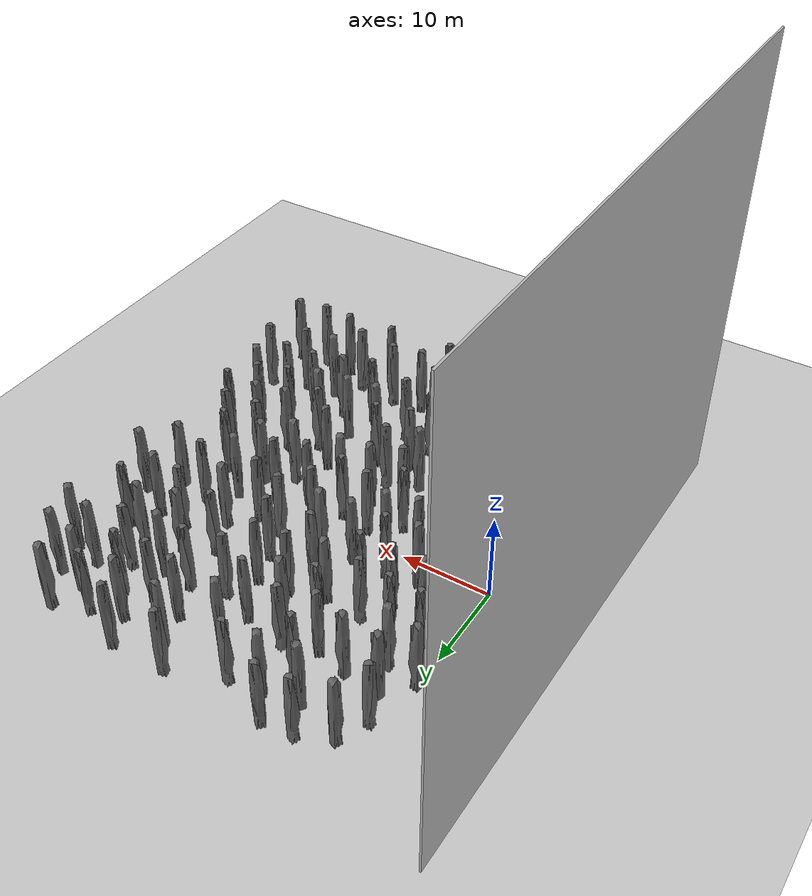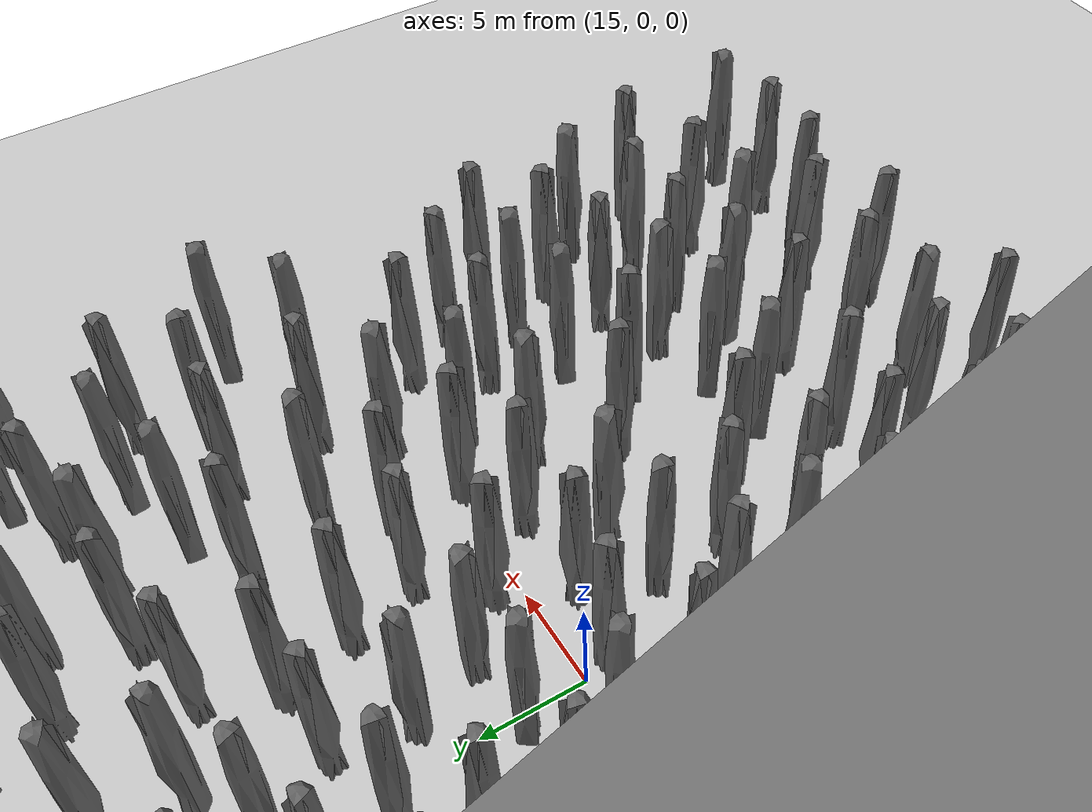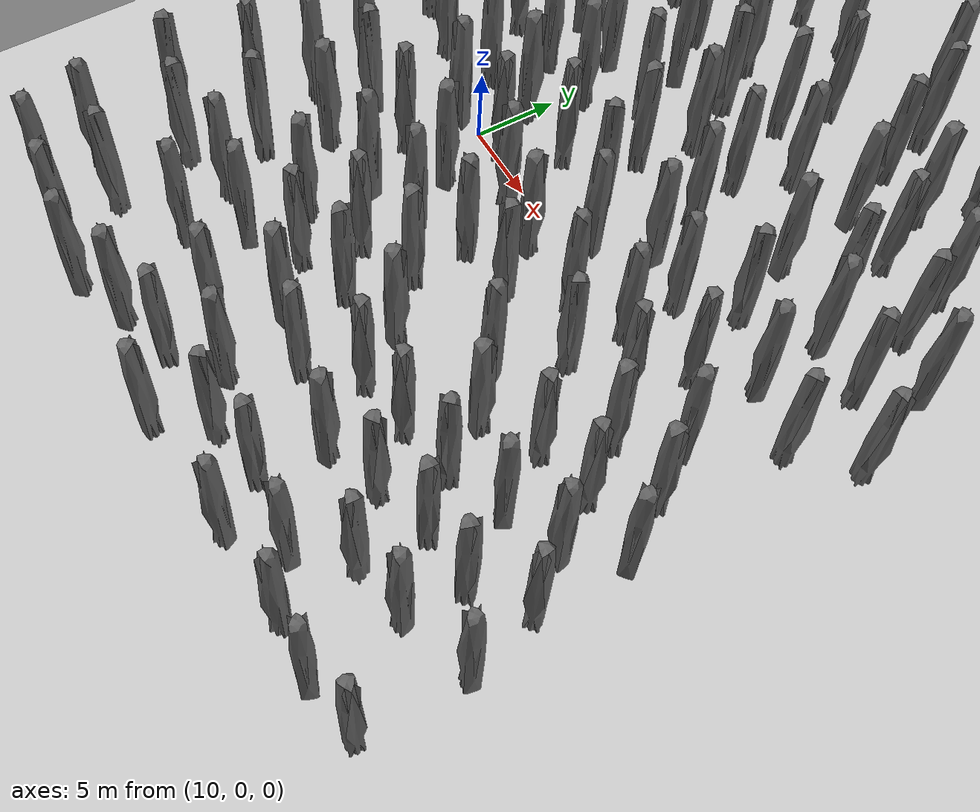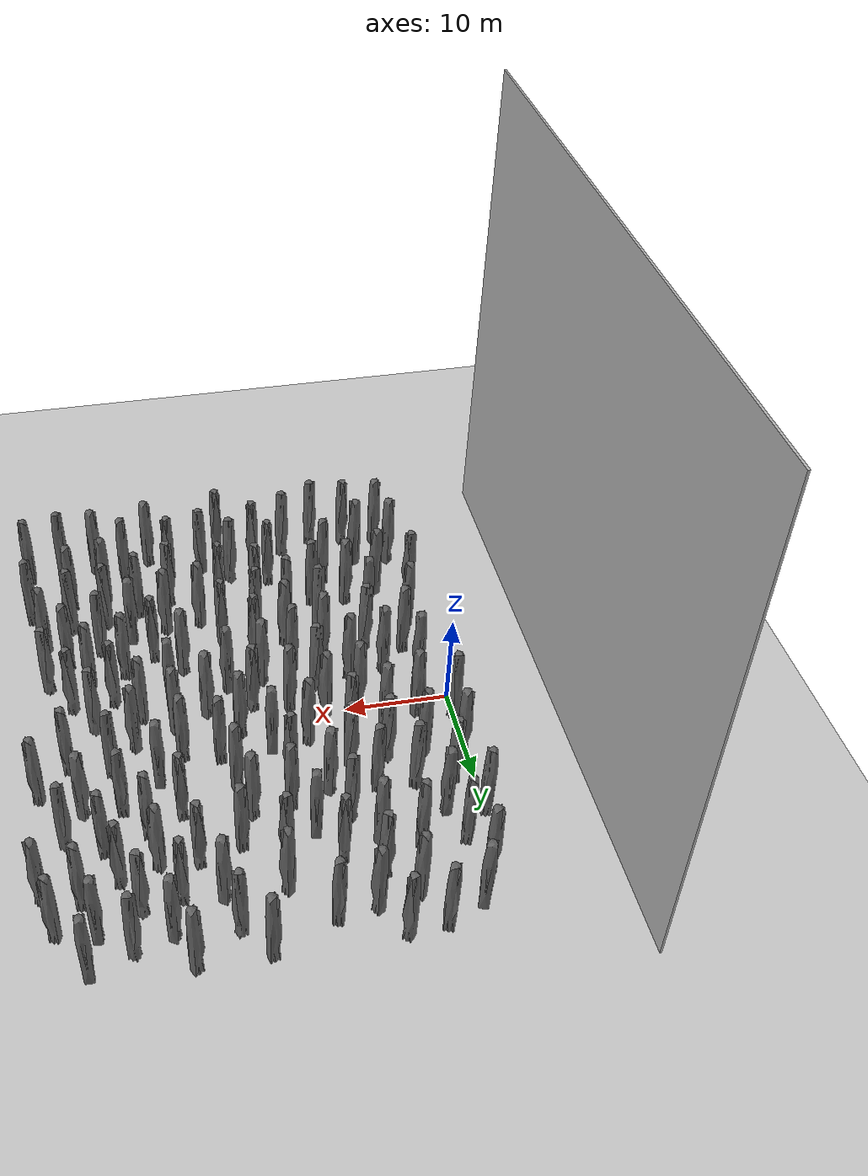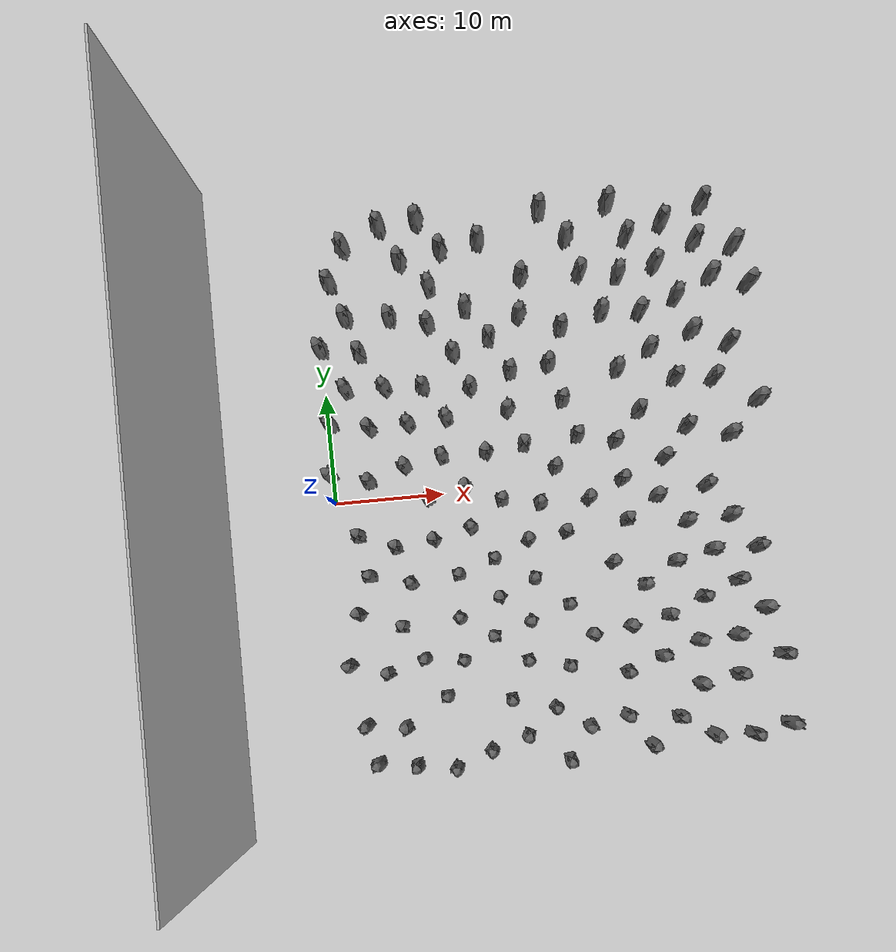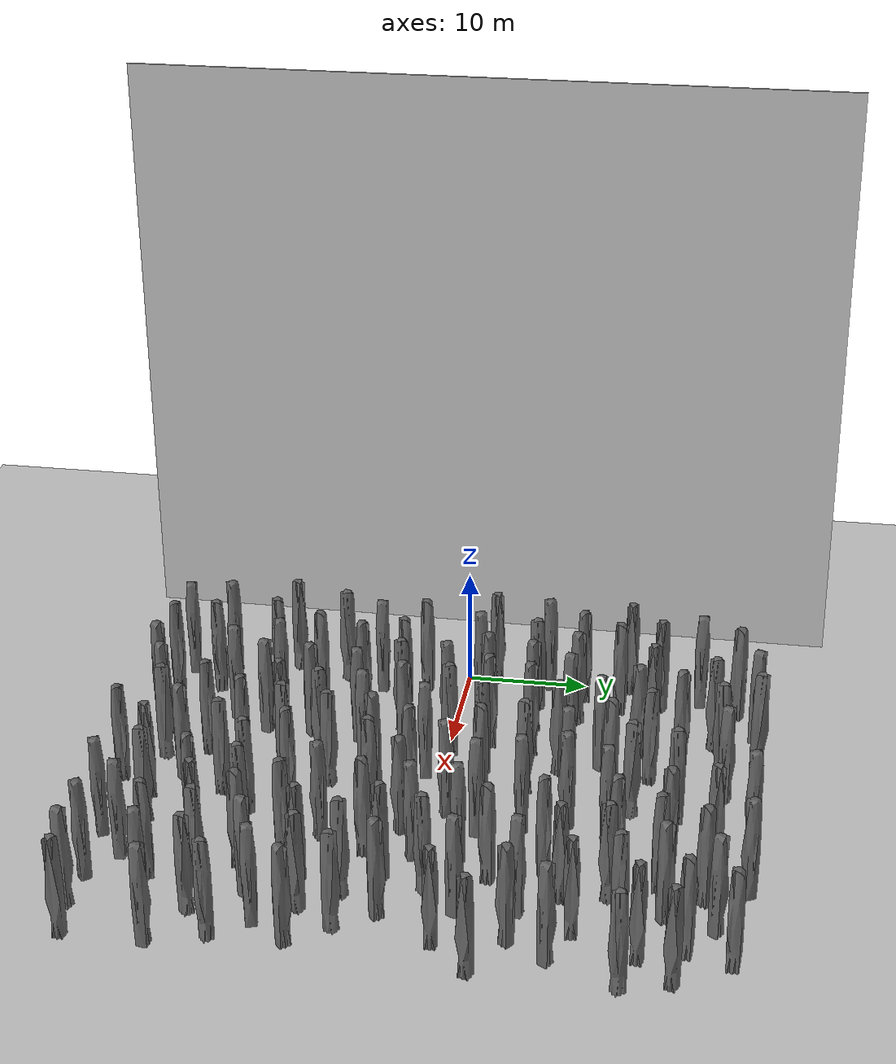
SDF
<sdf version="1.4">
 <world name="default">
  <model name="ground_plane">
   <static>1</static>
   <link name="link">
    <collision name="collision">
     <geometry><plane><normal>0 0 1</normal><size>1000 1000</size></plane></geometry>
     <surface>
      <contact><collide_bitmask>65535</collide_bitmask></contact>
      <friction><ode><mu>100</mu><mu2>50</mu2></ode></friction>
     </surface>
    </collision>
    <visual name="visual">
     <cast_shadows>0</cast_shadows>
     <geometry><plane><normal>0 0 1</normal><size>1000 1000</size></plane></geometry>
    </visual>
   </link>
  </model>
  <model name="wall_back">
   <static>1</static>
   <link name="link">
    <pose>0 0 25.0 0 0 0</pose>
    <collision name="collision"><geometry><box><size>60.0 0.2 50.0</size></box></geometry></collision>
    <visual name="visual">
     <cast_shadows>0</cast_shadows>
     <geometry><box><size>60.0 0.2 50.0</size></box></geometry>
    </visual>
   </link>
   <pose>-10.0 0.0 0 0 0 1.57</pose>
  </model>
  <include><uri>model://sun</uri></include>
  <include>
   <name>columnSimple Stone0</name>
   <uri>model://Simple Stone</uri>
   <pose>2.089127540588379 -23.750636100769043 0 0 0 1.75628542787</pose>
   <static>true</static>
  </include>
  <include>
   <name>columnSimple Stone1</name>
   <uri>model://Simple Stone</uri>
   <pose>1.3199572563171387 -20.33261203765869 0 0 0 2.23758723736</pose>
   <static>true</static>
  </include>
  <include>
   <name>columnSimple Stone2</name>
   <uri>model://Simple Stone</uri>
   <pose>0.31511756777763367 -14.834269523620605 0 0 0 5.33609842108</pose>
   <static>true</static>
  </include>
  <include>
   <name>columnSimple Stone3</name>
   <uri>model://Simple Stone</uri>
   <pose>1.520238995552063 -10.310273170471191 0 0 0 4.03418725223</pose>
   <static>true</static>
  </include>
  <include>
   <name>columnSimple Stone4</name>
   <uri>model://Simple Stone</uri>
   <pose>2.0736961364746094 -3.331663131713867 0 0 0 3.19888672758</pose>
   <static>true</static>
  </include>
  <include>
   <name>columnSimple Stone5</name>
   <uri>model://Simple Stone</uri>
   <pose>0.02124280482530594 2.39031982421875 0 0 0 5.16620424245</pose>
   <static>true</static>
  </include>
  <include>
   <name>columnSimple Stone6</name>
   <uri>model://Simple Stone</uri>
   <pose>0.38208937644958496 6.947551727294922 0 0 0 2.00722694748</pose>
   <static>true</static>
  </include>
  <include>
   <name>columnSimple Stone7</name>
   <uri>model://Simple Stone</uri>
   <pose>2.0325145721435547 10.037956237792969 0 0 0 0.336692622233</pose>
   <static>true</static>
  </include>
  <include>
   <name>columnSimple Stone8</name>
   <uri>model://Simple Stone</uri>
   <pose>0.1384894698858261 13.873977661132812 0 0 0 4.5975235246</pose>
   <static>true</static>
  </include>
  <include>
   <name>columnSimple Stone9</name>
   <uri>model://Simple Stone</uri>
   <pose>1.3763195276260376 19.83197021484375 0 0 0 1.58021642881</pose>
   <static>true</static>
  </include>
  <include>
   <name>columnSimple Stone10</name>
   <uri>model://Simple Stone</uri>
   <pose>4.868232727050781 -20.77367925643921 0 0 0 3.58949233093</pose>
   <static>true</static>
  </include>
  <include>
   <name>columnSimple Stone11</name>
   <uri>model://Simple Stone</uri>
   <pose>3.6764070987701416 -15.822320938110352 0 0 0 3.59125754981</pose>
   <static>true</static>
  </include>
  <include>
   <name>columnSimple Stone12</name>
   <uri>model://Simple Stone</uri>
   <pose>2.7545368671417236 -7.031398773193359 0 0 0 1.62038117285</pose>
   <static>true</static>
  </include>
  <include>
   <name>columnSimple Stone13</name>
   <uri>model://Simple Stone</uri>
   <pose>3.405611038208008 1.4844703674316406 0 0 0 1.93025226042</pose>
   <static>true</static>
  </include>
  <include>
   <name>columnSimple Stone14</name>
   <uri>model://Simple Stone</uri>
   <pose>3.8867599964141846 6.305400848388672 0 0 0 3.91636677235</pose>
   <static>true</static>
  </include>
  <include>
   <name>columnSimple Stone15</name>
   <uri>model://Simple Stone</uri>
   <pose>3.573453664779663 13.18438720703125 0 0 0 3.16454406888</pose>
   <static>true</static>
  </include>
  <include>
   <name>columnSimple Stone16</name>
   <uri>model://Simple Stone</uri>
   <pose>2.6093990802764893 16.55263900756836 0 0 0 4.35249936095</pose>
   <static>true</static>
  </include>
  <include>
   <name>columnSimple Stone17</name>
   <uri>model://Simple Stone</uri>
   <pose>2.8625264167785645 23.004619598388672 0 0 0 2.73665399316</pose>
   <static>true</static>
  </include>
  <include>
   <name>columnSimple Stone18</name>
   <uri>model://Simple Stone</uri>
   <pose>5.562690734863281 -24.20766258239746 0 0 0 0.137049204431</pose>
   <static>true</static>
  </include>
  <include>
   <name>columnSimple Stone19</name>
   <uri>model://Simple Stone</uri>
   <pose>7.038676738739014 -14.837610244750977 0 0 0 1.94142449035</pose>
   <static>true</static>
  </include>
  <include>
   <name>columnSimple Stone20</name>
   <uri>model://Simple Stone</uri>
   <pose>5.320240020751953 -11.784499168395996 0 0 0 3.089036522</pose>
   <static>true</static>
  </include>
  <include>
   <name>columnSimple Stone21</name>
   <uri>model://Simple Stone</uri>
   <pose>6.429753303527832 -7.970035552978516 0 0 0 0.506042084154</pose>
   <static>true</static>
  </include>
  <include>
   <name>columnSimple Stone22</name>
   <uri>model://Simple Stone</uri>
   <pose>5.321081161499023 -4.646579742431641 0 0 0 3.41383842941</pose>
   <static>true</static>
  </include>
  <include>
   <name>columnSimple Stone23</name>
   <uri>model://Simple Stone</uri>
   <pose>6.730787754058838 2.5879688262939453 0 0 0 2.33088399204</pose>
   <static>true</static>
  </include>
  <include>
   <name>columnSimple Stone24</name>
   <uri>model://Simple Stone</uri>
   <pose>7.389004707336426 6.399181365966797 0 0 0 0.767908006364</pose>
   <static>true</static>
  </include>
  <include>
   <name>columnSimple Stone25</name>
   <uri>model://Simple Stone</uri>
   <pose>5.532750606536865 9.886768341064453 0 0 0 0.834400732209</pose>
   <static>true</static>
  </include>
  <include>
   <name>columnSimple Stone26</name>
   <uri>model://Simple Stone</uri>
   <pose>6.593400478363037 16.1890869140625 0 0 0 4.44148814154</pose>
   <static>true</static>
  </include>
  <include>
   <name>columnSimple Stone27</name>
   <uri>model://Simple Stone</uri>
   <pose>6.302785396575928 24.62250518798828 0 0 0 1.17773842828</pose>
   <static>true</static>
  </include>
  <include>
   <name>columnSimple Stone28</name>
   <uri>model://Simple Stone</uri>
   <pose>9.025959968566895 -24.73707690834999 0 0 0 0.91093665833</pose>
   <static>true</static>
  </include>
  <include>
   <name>columnSimple Stone29</name>
   <uri>model://Simple Stone</uri>
   <pose>8.757588386535645 -18.3027081489563 0 0 0 1.57488840494</pose>
   <static>true</static>
  </include>
  <include>
   <name>columnSimple Stone30</name>
   <uri>model://Simple Stone</uri>
   <pose>8.80453872680664 -4.272365570068359 0 0 0 4.00267630085</pose>
   <static>true</static>
  </include>
  <include>
   <name>columnSimple Stone31</name>
   <uri>model://Simple Stone</uri>
   <pose>8.60007095336914 -0.5277271270751953 0 0 0 2.04513920781</pose>
   <static>true</static>
  </include>
  <include>
   <name>columnSimple Stone32</name>
   <uri>model://Simple Stone</uri>
   <pose>9.02550983428955 9.61263656616211 0 0 0 1.26187507129</pose>
   <static>true</static>
  </include>
  <include>
   <name>columnSimple Stone33</name>
   <uri>model://Simple Stone</uri>
   <pose>7.939784526824951 21.272674560546875 0 0 0 4.03147301381</pose>
   <static>true</static>
  </include>
  <include>
   <name>columnSimple Stone34</name>
   <uri>model://Simple Stone</uri>
   <pose>9.793307304382324 24.923786163330078 0 0 0 5.57087074738</pose>
   <static>true</static>
  </include>
  <include>
   <name>columnSimple Stone35</name>
   <uri>model://Simple Stone</uri>
   <pose>12.287559509277344 -23.457828998565674 0 0 0 0.766500239801</pose>
   <static>true</static>
  </include>
  <include>
   <name>columnSimple Stone36</name>
   <uri>model://Simple Stone</uri>
   <pose>10.515149116516113 -15.271949768066406 0 0 0 1.23738739103</pose>
   <static>true</static>
  </include>
  <include>
   <name>columnSimple Stone37</name>
   <uri>model://Simple Stone</uri>
   <pose>10.523487091064453 -11.480649948120117 0 0 0 0.769664836405</pose>
   <static>true</static>
  </include>
  <include>
   <name>columnSimple Stone38</name>
   <uri>model://Simple Stone</uri>
   <pose>10.731672286987305 -7.597433090209961 0 0 0 1.76186441075</pose>
   <static>true</static>
  </include>
  <include>
   <name>columnSimple Stone39</name>
   <uri>model://Simple Stone</uri>
   <pose>12.217470169067383 -3.4809017181396484 0 0 0 0.603357928491</pose>
   <static>true</static>
  </include>
  <include>
   <name>columnSimple Stone40</name>
   <uri>model://Simple Stone</uri>
   <pose>12.020466804504395 0.23082542419433594 0 0 0 3.96198621629</pose>
   <static>true</static>
  </include>
  <include>
   <name>columnSimple Stone41</name>
   <uri>model://Simple Stone</uri>
   <pose>10.178444862365723 3.2110042572021484 0 0 0 0.289848941272</pose>
   <static>true</static>
  </include>
  <include>
   <name>columnSimple Stone42</name>
   <uri>model://Simple Stone</uri>
   <pose>10.88403034210205 6.642717361450195 0 0 0 0.466043816732</pose>
   <static>true</static>
  </include>
  <include>
   <name>columnSimple Stone43</name>
   <uri>model://Simple Stone</uri>
   <pose>12.050304412841797 12.452354431152344 0 0 0 0.904490395164</pose>
   <static>true</static>
  </include>
  <include>
   <name>columnSimple Stone44</name>
   <uri>model://Simple Stone</uri>
   <pose>9.9757080078125 15.275569915771484 0 0 0 2.16217307419</pose>
   <static>true</static>
  </include>
  <include>
   <name>columnSimple Stone45</name>
   <uri>model://Simple Stone</uri>
   <pose>10.377164840698242 18.755992889404297 0 0 0 0.355086018241</pose>
   <static>true</static>
  </include>
  <include>
   <name>columnSimple Stone46</name>
   <uri>model://Simple Stone</uri>
   <pose>11.714679718017578 21.994136810302734 0 0 0 3.67260565642</pose>
   <static>true</static>
  </include>
  <include>
   <name>columnSimple Stone47</name>
   <uri>model://Simple Stone</uri>
   <pose>14.492658615112305 -19.13565969467163 0 0 0 0.0543491025532</pose>
   <static>true</static>
  </include>
  <include>
   <name>columnSimple Stone48</name>
   <uri>model://Simple Stone</uri>
   <pose>13.465665817260742 -13.382780075073242 0 0 0 4.62112501889</pose>
   <static>true</static>
  </include>
  <include>
   <name>columnSimple Stone49</name>
   <uri>model://Simple Stone</uri>
   <pose>14.24135684967041 -9.966229438781738 0 0 0 4.10295872997</pose>
   <static>true</static>
  </include>
  <include>
   <name>columnSimple Stone50</name>
   <uri>model://Simple Stone</uri>
   <pose>14.048151016235352 -6.468061447143555 0 0 0 1.54336510472</pose>
   <static>true</static>
  </include>
  <include>
   <name>columnSimple Stone51</name>
   <uri>model://Simple Stone</uri>
   <pose>14.198853492736816 3.183809280395508 0 0 0 4.0722662424</pose>
   <static>true</static>
  </include>
  <include>
   <name>columnSimple Stone52</name>
   <uri>model://Simple Stone</uri>
   <pose>13.300483703613281 9.179500579833984 0 0 0 2.46300177651</pose>
   <static>true</static>
  </include>
  <include>
   <name>columnSimple Stone53</name>
   <uri>model://Simple Stone</uri>
   <pose>13.523374557495117 16.50360107421875 0 0 0 6.0386637076</pose>
   <static>true</static>
  </include>
  <include>
   <name>columnSimple Stone54</name>
   <uri>model://Simple Stone</uri>
   <pose>15.64159107208252 -22.44541311264038 0 0 0 5.88668590663</pose>
   <static>true</static>
  </include>
  <include>
   <name>columnSimple Stone55</name>
   <uri>model://Simple Stone</uri>
   <pose>16.27473258972168 -15.7996826171875 0 0 0 0.204175545166</pose>
   <static>true</static>
  </include>
  <include>
   <name>columnSimple Stone56</name>
   <uri>model://Simple Stone</uri>
   <pose>16.81926727294922 -12.33875846862793 0 0 0 5.59144863307</pose>
   <static>true</static>
  </include>
  <include>
   <name>columnSimple Stone57</name>
   <uri>model://Simple Stone</uri>
   <pose>17.253034591674805 -5.052705764770508 0 0 0 2.43969145582</pose>
   <static>true</static>
  </include>
  <include>
   <name>columnSimple Stone58</name>
   <uri>model://Simple Stone</uri>
   <pose>15.204755783081055 -1.230276107788086 0 0 0 1.75334172094</pose>
   <static>true</static>
  </include>
  <include>
   <name>columnSimple Stone59</name>
   <uri>model://Simple Stone</uri>
   <pose>16.5061092376709 6.880130767822266 0 0 0 5.51758037674</pose>
   <static>true</static>
  </include>
  <include>
   <name>columnSimple Stone60</name>
   <uri>model://Simple Stone</uri>
   <pose>17.03005599975586 10.344230651855469 0 0 0 1.80578448708</pose>
   <static>true</static>
  </include>
  <include>
   <name>columnSimple Stone61</name>
   <uri>model://Simple Stone</uri>
   <pose>15.382611274719238 13.534133911132812 0 0 0 2.92909482202</pose>
   <static>true</static>
  </include>
  <include>
   <name>columnSimple Stone62</name>
   <uri>model://Simple Stone</uri>
   <pose>15.17757511138916 22.52599334716797 0 0 0 1.22222422126</pose>
   <static>true</static>
  </include>
  <include>
   <name>columnSimple Stone63</name>
   <uri>model://Simple Stone</uri>
   <pose>19.17519187927246 -24.981346003711224 0 0 0 0.140723054267</pose>
   <static>true</static>
  </include>
  <include>
   <name>columnSimple Stone64</name>
   <uri>model://Simple Stone</uri>
   <pose>18.339569091796875 -20.210368156433105 0 0 0 0.757596582929</pose>
   <static>true</static>
  </include>
  <include>
   <name>columnSimple Stone65</name>
   <uri>model://Simple Stone</uri>
   <pose>17.536304473876953 -8.544734954833984 0 0 0 5.96339551307</pose>
   <static>true</static>
  </include>
  <include>
   <name>columnSimple Stone66</name>
   <uri>model://Simple Stone</uri>
   <pose>18.65448760986328 -1.8417186737060547 0 0 0 0.250066793293</pose>
   <static>true</static>
  </include>
  <include>
   <name>columnSimple Stone67</name>
   <uri>model://Simple Stone</uri>
   <pose>17.679977416992188 3.5791378021240234 0 0 0 2.96585802048</pose>
   <static>true</static>
  </include>
  <include>
   <name>columnSimple Stone68</name>
   <uri>model://Simple Stone</uri>
   <pose>18.330169677734375 15.427913665771484 0 0 0 5.53223342657</pose>
   <static>true</static>
  </include>
  <include>
   <name>columnSimple Stone69</name>
   <uri>model://Simple Stone</uri>
   <pose>18.817745208740234 18.897319793701172 0 0 0 3.76775713082</pose>
   <static>true</static>
  </include>
  <include>
   <name>columnSimple Stone70</name>
   <uri>model://Simple Stone</uri>
   <pose>21.251096725463867 -22.159090757369995 0 0 0 5.10028997874</pose>
   <static>true</static>
  </include>
  <include>
   <name>columnSimple Stone71</name>
   <uri>model://Simple Stone</uri>
   <pose>19.941171646118164 -16.6262788772583 0 0 0 6.05786060561</pose>
   <static>true</static>
  </include>
  <include>
   <name>columnSimple Stone72</name>
   <uri>model://Simple Stone</uri>
   <pose>20.40487289428711 -11.153459548950195 0 0 0 0.121773912249</pose>
   <static>true</static>
  </include>
  <include>
   <name>columnSimple Stone73</name>
   <uri>model://Simple Stone</uri>
   <pose>20.73398208618164 -4.6613311767578125 0 0 0 3.50660844285</pose>
   <static>true</static>
  </include>
  <include>
   <name>columnSimple Stone74</name>
   <uri>model://Simple Stone</uri>
   <pose>20.298858642578125 1.251913070678711 0 0 0 2.00394550341</pose>
   <static>true</static>
  </include>
  <include>
   <name>columnSimple Stone75</name>
   <uri>model://Simple Stone</uri>
   <pose>21.50251579284668 7.305660247802734 0 0 0 1.81656002355</pose>
   <static>true</static>
  </include>
  <include>
   <name>columnSimple Stone76</name>
   <uri>model://Simple Stone</uri>
   <pose>20.537118911743164 10.673526763916016 0 0 0 2.10658306181</pose>
   <static>true</static>
  </include>
  <include>
   <name>columnSimple Stone77</name>
   <uri>model://Simple Stone</uri>
   <pose>21.95860481262207 13.87569808959961 0 0 0 1.76126737758</pose>
   <static>true</static>
  </include>
  <include>
   <name>columnSimple Stone78</name>
   <uri>model://Simple Stone</uri>
   <pose>21.00710678100586 24.8216552734375 0 0 0 1.8180089086</pose>
   <static>true</static>
  </include>
  <include>
   <name>columnSimple Stone79</name>
   <uri>model://Simple Stone</uri>
   <pose>24.690448760986328 -21.491723775863647 0 0 0 5.78518358502</pose>
   <static>true</static>
  </include>
  <include>
   <name>columnSimple Stone80</name>
   <uri>model://Simple Stone</uri>
   <pose>22.340761184692383 -14.073537826538086 0 0 0 4.02939281375</pose>
   <static>true</static>
  </include>
  <include>
   <name>columnSimple Stone81</name>
   <uri>model://Simple Stone</uri>
   <pose>24.677413940429688 -7.760255813598633 0 0 0 2.20089425405</pose>
   <static>true</static>
  </include>
  <include>
   <name>columnSimple Stone82</name>
   <uri>model://Simple Stone</uri>
   <pose>23.05851173400879 -1.8340606689453125 0 0 0 2.30340423145</pose>
   <static>true</static>
  </include>
  <include>
   <name>columnSimple Stone83</name>
   <uri>model://Simple Stone</uri>
   <pose>22.527265548706055 3.9553775787353516 0 0 0 1.5514107444</pose>
   <static>true</static>
  </include>
  <include>
   <name>columnSimple Stone84</name>
   <uri>model://Simple Stone</uri>
   <pose>24.13132667541504 18.74321746826172 0 0 0 2.55493770412</pose>
   <static>true</static>
  </include>
  <include>
   <name>columnSimple Stone85</name>
   <uri>model://Simple Stone</uri>
   <pose>23.25668716430664 22.135784149169922 0 0 0 5.098842837</pose>
   <static>true</static>
  </include>
  <include>
   <name>columnSimple Stone86</name>
   <uri>model://Simple Stone</uri>
   <pose>26.68305206298828 -24.373397767543793 0 0 0 2.05741406445</pose>
   <static>true</static>
  </include>
  <include>
   <name>columnSimple Stone87</name>
   <uri>model://Simple Stone</uri>
   <pose>25.080078125 -17.6649808883667 0 0 0 0.439076417772</pose>
   <static>true</static>
  </include>
  <include>
   <name>columnSimple Stone88</name>
   <uri>model://Simple Stone</uri>
   <pose>25.816099166870117 -13.630217552185059 0 0 0 3.9669711779</pose>
   <static>true</static>
  </include>
  <include>
   <name>columnSimple Stone89</name>
   <uri>model://Simple Stone</uri>
   <pose>26.317840576171875 -4.056501388549805 0 0 0 3.0974609171</pose>
   <static>true</static>
  </include>
  <include>
   <name>columnSimple Stone90</name>
   <uri>model://Simple Stone</uri>
   <pose>26.238088607788086 -0.3627300262451172 0 0 0 1.98158537166</pose>
   <static>true</static>
  </include>
  <include>
   <name>columnSimple Stone91</name>
   <uri>model://Simple Stone</uri>
   <pose>25.93150520324707 3.127330780029297 0 0 0 1.85159538146</pose>
   <static>true</static>
  </include>
  <include>
   <name>columnSimple Stone92</name>
   <uri>model://Simple Stone</uri>
   <pose>26.718326568603516 9.678592681884766 0 0 0 0.11330117946</pose>
   <static>true</static>
  </include>
  <include>
   <name>columnSimple Stone93</name>
   <uri>model://Simple Stone</uri>
   <pose>25.801183700561523 14.993751525878906 0 0 0 0.192362760078</pose>
   <static>true</static>
  </include>
  <include>
   <name>columnSimple Stone94</name>
   <uri>model://Simple Stone</uri>
   <pose>29.31672477722168 -22.06292748451233 0 0 0 1.59594806412</pose>
   <static>true</static>
  </include>
  <include>
   <name>columnSimple Stone95</name>
   <uri>model://Simple Stone</uri>
   <pose>28.394611358642578 -16.529909133911133 0 0 0 4.80505964723</pose>
   <static>true</static>
  </include>
  <include>
   <name>columnSimple Stone96</name>
   <uri>model://Simple Stone</uri>
   <pose>29.253799438476562 -12.954399108886719 0 0 0 2.88706531652</pose>
   <static>true</static>
  </include>
  <include>
   <name>columnSimple Stone97</name>
   <uri>model://Simple Stone</uri>
   <pose>27.372377395629883 -9.998936653137207 0 0 0 6.24732609282</pose>
   <static>true</static>
  </include>
  <include>
   <name>columnSimple Stone98</name>
   <uri>model://Simple Stone</uri>
   <pose>29.25417137145996 -2.145355224609375 0 0 0 4.31863375902</pose>
   <static>true</static>
  </include>
  <include>
   <name>columnSimple Stone99</name>
   <uri>model://Simple Stone</uri>
   <pose>28.324342727661133 5.686399459838867 0 0 0 2.94119924643</pose>
   <static>true</static>
  </include>
  <include>
   <name>columnSimple Stone100</name>
   <uri>model://Simple Stone</uri>
   <pose>29.292362213134766 14.700183868408203 0 0 0 4.08010885157</pose>
   <static>true</static>
  </include>
  <include>
   <name>columnSimple Stone101</name>
   <uri>model://Simple Stone</uri>
   <pose>27.60910987854004 18.319496154785156 0 0 0 6.11398850215</pose>
   <static>true</static>
  </include>
  <include>
   <name>columnSimple Stone102</name>
   <uri>model://Simple Stone</uri>
   <pose>28.65312385559082 21.66382598876953 0 0 0 2.65546159454</pose>
   <static>true</static>
  </include>
  <include>
   <name>columnSimple Stone103</name>
   <uri>model://Simple Stone</uri>
   <pose>27.23101234436035 24.865718841552734 0 0 0 2.06369009277</pose>
   <static>true</static>
  </include>
  <include>
   <name>columnSimple Stone104</name>
   <uri>model://Simple Stone</uri>
   <pose>31.559349060058594 -19.371246337890625 0 0 0 3.63785136887</pose>
   <static>true</static>
  </include>
  <include>
   <name>columnSimple Stone105</name>
   <uri>model://Simple Stone</uri>
   <pose>31.729352951049805 -15.455660820007324 0 0 0 5.70139561808</pose>
   <static>true</static>
  </include>
  <include>
   <name>columnSimple Stone106</name>
   <uri>model://Simple Stone</uri>
   <pose>30.38751983642578 -8.164749145507812 0 0 0 4.43220120817</pose>
   <static>true</static>
  </include>
  <include>
   <name>columnSimple Stone107</name>
   <uri>model://Simple Stone</uri>
   <pose>31.707752227783203 -4.646245956420898 0 0 0 5.87561360838</pose>
   <static>true</static>
  </include>
  <include>
   <name>columnSimple Stone108</name>
   <uri>model://Simple Stone</uri>
   <pose>30.23151206970215 1.219064712524414 0 0 0 3.78301927237</pose>
   <static>true</static>
  </include>
  <include>
   <name>columnSimple Stone109</name>
   <uri>model://Simple Stone</uri>
   <pose>31.87114906311035 8.377620697021484 0 0 0 1.41520845014</pose>
   <static>true</static>
  </include>
  <include>
   <name>columnSimple Stone110</name>
   <uri>model://Simple Stone</uri>
   <pose>29.853681564331055 11.241943359375 0 0 0 4.62765679932</pose>
   <static>true</static>
  </include>
  <include>
   <name>columnSimple Stone111</name>
   <uri>model://Simple Stone</uri>
   <pose>31.061031341552734 18.91845703125 0 0 0 0.626406151087</pose>
   <static>true</static>
  </include>
  <include>
   <name>columnSimple Stone112</name>
   <uri>model://Simple Stone</uri>
   <pose>32.02627944946289 22.741641998291016 0 0 0 1.00497437782</pose>
   <static>true</static>
  </include>
  <include>
   <name>columnSimple Stone113</name>
   <uri>model://Simple Stone</uri>
   <pose>32.26821517944336 -23.96578288078308 0 0 0 2.25314031655</pose>
   <static>true</static>
  </include>
  <include>
   <name>columnSimple Stone114</name>
   <uri>model://Simple Stone</uri>
   <pose>32.48303985595703 -11.595531463623047 0 0 0 1.10613981202</pose>
   <static>true</static>
  </include>
  <include>
   <name>columnSimple Stone115</name>
   <uri>model://Simple Stone</uri>
   <pose>33.81614685058594 -7.444313049316406 0 0 0 4.34337486777</pose>
   <static>true</static>
  </include>
  <include>
   <name>columnSimple Stone116</name>
   <uri>model://Simple Stone</uri>
   <pose>33.72964096069336 -1.5815658569335938 0 0 0 0.65875122963</pose>
   <static>true</static>
  </include>
  <include>
   <name>columnSimple Stone117</name>
   <uri>model://Simple Stone</uri>
   <pose>32.50593948364258 3.8839263916015625 0 0 0 1.16093618711</pose>
   <static>true</static>
  </include>
  <include>
   <name>columnSimple Stone118</name>
   <uri>model://Simple Stone</uri>
   <pose>33.85247802734375 12.51031494140625 0 0 0 4.83846692548</pose>
   <static>true</static>
  </include>
  <include>
   <name>columnSimple Stone119</name>
   <uri>model://Simple Stone</uri>
   <pose>32.682071685791016 15.81253433227539 0 0 0 5.97027932665</pose>
   <static>true</static>
  </include>
  <include>
   <name>columnSimple Stone120</name>
   <uri>model://Simple Stone</uri>
   <pose>35.76584243774414 -24.168569922447205 0 0 0 1.21682243262</pose>
   <static>true</static>
  </include>
  <include>
   <name>columnSimple Stone121</name>
   <uri>model://Simple Stone</uri>
   <pose>35.012603759765625 -18.780019283294678 0 0 0 1.84415002598</pose>
   <static>true</static>
  </include>
  <include>
   <name>columnSimple Stone122</name>
   <uri>model://Simple Stone</uri>
   <pose>35.22860336303711 -15.283184051513672 0 0 0 5.47993965641</pose>
   <static>true</static>
  </include>
  <include>
   <name>columnSimple Stone123</name>
   <uri>model://Simple Stone</uri>
   <pose>35.760887145996094 -10.358503341674805 0 0 0 1.84151817366</pose>
   <static>true</static>
  </include>
  <include>
   <name>columnSimple Stone124</name>
   <uri>model://Simple Stone</uri>
   <pose>35.69093704223633 -4.484638214111328 0 0 0 5.83271741844</pose>
   <static>true</static>
  </include>
  <include>
   <name>columnSimple Stone125</name>
   <uri>model://Simple Stone</uri>
   <pose>36.44671630859375 2.826505661010742 0 0 0 4.72034392441</pose>
   <static>true</static>
  </include>
  <include>
   <name>columnSimple Stone126</name>
   <uri>model://Simple Stone</uri>
   <pose>35.35758590698242 8.032249450683594 0 0 0 2.51419444841</pose>
   <static>true</static>
  </include>
  <include>
   <name>columnSimple Stone127</name>
   <uri>model://Simple Stone</uri>
   <pose>37.057655334472656 11.095626831054688 0 0 0 1.05510262279</pose>
   <static>true</static>
  </include>
  <include>
   <name>columnSimple Stone128</name>
   <uri>model://Simple Stone</uri>
   <pose>36.03013610839844 17.392868041992188 0 0 0 4.58731817436</pose>
   <static>true</static>
  </include>
  <include>
   <name>columnSimple Stone129</name>
   <uri>model://Simple Stone</uri>
   <pose>34.87333297729492 20.699874877929688 0 0 0 3.00589129155</pose>
   <static>true</static>
  </include>
  <include>
   <name>columnSimple Stone130</name>
   <uri>model://Simple Stone</uri>
   <pose>35.81947326660156 24.073204040527344 0 0 0 3.13703117841</pose>
   <static>true</static>
  </include>
  <include>
   <name>columnSimple Stone131</name>
   <uri>model://Simple Stone</uri>
   <pose>39.21380615234375 -23.547247529029846 0 0 0 4.65285617482</pose>
   <static>true</static>
  </include>
  <include>
   <name>columnSimple Stone132</name>
   <uri>model://Simple Stone</uri>
   <pose>39.14063262939453 -17.338757038116455 0 0 0 1.38143155857</pose>
   <static>true</static>
  </include>
  <include>
   <name>columnSimple Stone133</name>
   <uri>model://Simple Stone</uri>
   <pose>37.958412170410156 -13.087127685546875 0 0 0 3.83666071589</pose>
   <static>true</static>
  </include>
  <include>
   <name>columnSimple Stone134</name>
   <uri>model://Simple Stone</uri>
   <pose>37.807098388671875 -7.514646530151367 0 0 0 0.701075326772</pose>
   <static>true</static>
  </include>
  <include>
   <name>columnSimple Stone135</name>
   <uri>model://Simple Stone</uri>
   <pose>39.24397659301758 5.759679794311523 0 0 0 4.36629180089</pose>
   <static>true</static>
  </include>
  <include>
   <name>columnSimple Stone136</name>
   <uri>model://Simple Stone</uri>
   <pose>39.373260498046875 16.34499740600586 0 0 0 3.83133618601</pose>
   <static>true</static>
  </include>
  <include>
   <name>columnSimple Stone137</name>
   <uri>model://Simple Stone</uri>
   <pose>38.366546630859375 20.003555297851562 0 0 0 4.37274467909</pose>
   <static>true</static>
  </include>
 </world>
</sdf>
